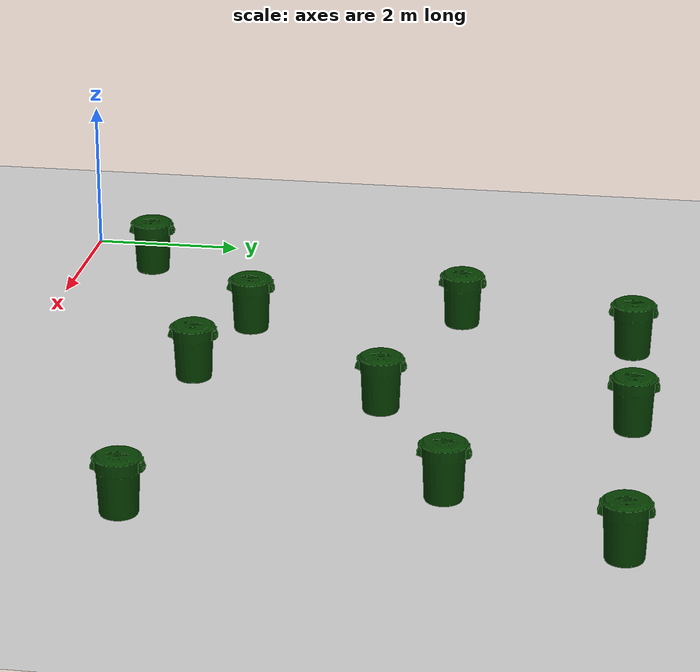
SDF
<sdf version="1.7">
 <world name="default">
  <light name="sun" type="directional">
   <pose>0 0 10 0 -0 0</pose>
   <diffuse>0.8 0.8 0.8 1</diffuse>
   <specular>0.2 0.2 0.2 1</specular>
   <attenuation>
    <range>1000</range>
    <constant>0.9</constant>
    <linear>0.01</linear>
    <quadratic>0.001</quadratic>
   </attenuation>
   <direction>-0.5 0.1 -0.9</direction>
   <spot><inner_angle>0</inner_angle><outer_angle>0</outer_angle><falloff>0</falloff></spot>
  </light>
  <model name="ground_plane">
   <static>1</static>
   <link name="link">
    <collision name="collision">
     <geometry><plane><normal>0 0 1</normal><size>100 100</size></plane></geometry>
     <surface><friction><ode><mu>100</mu><mu2>50</mu2></ode></friction></surface>
    </collision>
    <visual name="visual">
     <cast_shadows>0</cast_shadows>
     <geometry><plane><normal>0 0 1</normal><size>100 100</size></plane></geometry>
     <material>
      <script><uri>file://media/materials/scripts/gazebo.material</uri><name>Gazebo/Grey</name></script>
     </material>
    </visual>
   </link>
  </model>
  <gravity>0 0 -9.8</gravity>
  <magnetic_field>6e-06 2.3e-05 -4.2e-05</magnetic_field>
  <atmosphere type="adiabatic"/>
  <physics type="ode">
   <max_step_size>0.001</max_step_size>
   <real_time_factor>1</real_time_factor>
   <real_time_update_rate>1000</real_time_update_rate>
  </physics>
  <scene><ambient>0.4 0.4 0.4 1</ambient><background>0.7 0.7 0.7 1</background><shadows>1</shadows></scene>
  <audio><device>default</device></audio>
  <spherical_coordinates>
   <surface_model>EARTH_WGS84</surface_model>
   <latitude_deg>0</latitude_deg>
   <longitude_deg>0</longitude_deg>
   <elevation>0</elevation>
   <heading_deg>0</heading_deg>
  </spherical_coordinates>
  <model name="first_2015_trash_can">
   <link name="link">
    <inertial>
     <pose>0 0 0.3683 0 -0 0</pose>
     <mass>4.83076</mass>
     <inertia>
      <ixx>0.281534</ixx>
      <ixy>0</ixy>
      <ixz>0</ixz>
      <iyy>0.281534</iyy>
      <iyz>0</iyz>
      <izz>0.126223</izz>
     </inertia>
    </inertial>
    <visual name="visual">
     <geometry><mesh><uri>model://first_2015_trash_can/meshes/trash_can.dae</uri></mesh></geometry>
    </visual>
    <collision name="collision">
     <geometry><mesh><uri>model://first_2015_trash_can/meshes/trash_can.dae</uri></mesh></geometry>
    </collision>
   </link>
   <pose>1.00016 0.999981 -8e-06 -8e-06 1.4e-05 -0.000935</pose>
  </model>
  <model name="first_2015_trash_can_clone">
   <link name="link">
    <inertial>
     <pose>0 0 0.3683 0 -0 0</pose>
     <mass>4.83076</mass>
     <inertia>
      <ixx>0.281534</ixx>
      <ixy>0</ixy>
      <ixz>0</ixz>
      <iyy>0.281534</iyy>
      <iyz>0</iyz>
      <izz>0.126223</izz>
     </inertia>
    </inertial>
    <visual name="visual">
     <geometry><mesh><uri>model://first_2015_trash_can/meshes/trash_can.dae</uri></mesh></geometry>
    </visual>
    <collision name="collision">
     <geometry><mesh><uri>model://first_2015_trash_can/meshes/trash_can.dae</uri></mesh></geometry>
    </collision>
   </link>
   <pose>2.97578 2.78275 1e-06 -2.5e-05 1.4e-05 -0.00071</pose>
  </model>
  <model name="first_2015_trash_can_clone_0">
   <link name="link">
    <inertial>
     <pose>0 0 0.3683 0 -0 0</pose>
     <mass>4.83076</mass>
     <inertia>
      <ixx>0.281534</ixx>
      <ixy>0</ixy>
      <ixz>0</ixz>
      <iyy>0.281534</iyy>
      <iyz>0</iyz>
      <izz>0.126223</izz>
     </inertia>
    </inertial>
    <visual name="visual">
     <geometry><mesh><uri>model://first_2015_trash_can/meshes/trash_can.dae</uri></mesh></geometry>
    </visual>
    <collision name="collision">
     <geometry><mesh><uri>model://first_2015_trash_can/meshes/trash_can.dae</uri></mesh></geometry>
    </collision>
   </link>
   <pose>2.38483 5.53403 -4e-06 1.5e-05 1.8e-05 -0.000788</pose>
  </model>
  <model name="first_2015_trash_can_clone_1">
   <link name="link">
    <inertial>
     <pose>0 0 0.3683 0 -0 0</pose>
     <mass>4.83076</mass>
     <inertia>
      <ixx>0.281534</ixx>
      <ixy>0</ixy>
      <ixz>0</ixz>
      <iyy>0.281534</iyy>
      <iyz>0</iyz>
      <izz>0.126223</izz>
     </inertia>
    </inertial>
    <visual name="visual">
     <geometry><mesh><uri>model://first_2015_trash_can/meshes/trash_can.dae</uri></mesh></geometry>
    </visual>
    <collision name="collision">
     <geometry><mesh><uri>model://first_2015_trash_can/meshes/trash_can.dae</uri></mesh></geometry>
    </collision>
   </link>
   <pose>4.70859 2.37016 -1e-06 -1.7e-05 6e-06 -0.000856</pose>
  </model>
  <model name="first_2015_trash_can_clone_2">
   <link name="link">
    <inertial>
     <pose>0 0 0.3683 0 -0 0</pose>
     <mass>4.83076</mass>
     <inertia>
      <ixx>0.281534</ixx>
      <ixy>0</ixy>
      <ixz>0</ixz>
      <iyy>0.281534</iyy>
      <iyz>0</iyz>
      <izz>0.126223</izz>
     </inertia>
    </inertial>
    <visual name="visual">
     <geometry><mesh><uri>model://first_2015_trash_can/meshes/trash_can.dae</uri></mesh></geometry>
    </visual>
    <collision name="collision">
     <geometry><mesh><uri>model://first_2015_trash_can/meshes/trash_can.dae</uri></mesh></geometry>
    </collision>
   </link>
   <pose>5.36332 4.8686 -4e-06 -2e-06 3e-06 -0.000521</pose>
  </model>
  <model name="first_2015_trash_can_clone_3">
   <link name="link">
    <inertial>
     <pose>0 0 0.3683 0 -0 0</pose>
     <mass>4.83076</mass>
     <inertia>
      <ixx>0.281534</ixx>
      <ixy>0</ixy>
      <ixz>0</ixz>
      <iyy>0.281534</iyy>
      <iyz>0</iyz>
      <izz>0.126223</izz>
     </inertia>
    </inertial>
    <visual name="visual">
     <geometry><mesh><uri>model://first_2015_trash_can/meshes/trash_can.dae</uri></mesh></geometry>
    </visual>
    <collision name="collision">
     <geometry><mesh><uri>model://first_2015_trash_can/meshes/trash_can.dae</uri></mesh></geometry>
    </collision>
   </link>
   <pose>8.98492 8.09719 -1e-06 -2e-06 7e-06 -0.000698</pose>
  </model>
  <model name="first_2015_trash_can_clone_4">
   <link name="link">
    <inertial>
     <pose>0 0 0.3683 0 -0 0</pose>
     <mass>4.83076</mass>
     <inertia>
      <ixx>0.281534</ixx>
      <ixy>0</ixy>
      <ixz>0</ixz>
      <iyy>0.281534</iyy>
      <iyz>0</iyz>
      <izz>0.126223</izz>
     </inertia>
    </inertial>
    <visual name="visual">
     <geometry><mesh><uri>model://first_2015_trash_can/meshes/trash_can.dae</uri></mesh></geometry>
    </visual>
    <collision name="collision">
     <geometry><mesh><uri>model://first_2015_trash_can/meshes/trash_can.dae</uri></mesh></geometry>
    </collision>
   </link>
   <pose>7.77484 5.94812 3e-06 -2e-05 -1.2e-05 -0.000467</pose>
  </model>
  <model name="first_2015_trash_can_clone_5">
   <link name="link">
    <inertial>
     <pose>0 0 0.3683 0 -0 0</pose>
     <mass>4.83076</mass>
     <inertia>
      <ixx>0.281534</ixx>
      <ixy>0</ixy>
      <ixz>0</ixz>
      <iyy>0.281534</iyy>
      <iyz>0</iyz>
      <izz>0.126223</izz>
     </inertia>
    </inertial>
    <visual name="visual">
     <geometry><mesh><uri>model://first_2015_trash_can/meshes/trash_can.dae</uri></mesh></geometry>
    </visual>
    <collision name="collision">
     <geometry><mesh><uri>model://first_2015_trash_can/meshes/trash_can.dae</uri></mesh></geometry>
    </collision>
   </link>
   <pose>5.52241 7.98393 -4e-06 2e-06 3e-06 -0.000361</pose>
  </model>
  <model name="first_2015_trash_can_clone_6">
   <link name="link">
    <inertial>
     <pose>0 0 0.3683 0 -0 0</pose>
     <mass>4.83076</mass>
     <inertia>
      <ixx>0.281534</ixx>
      <ixy>0</ixy>
      <ixz>0</ixz>
      <iyy>0.281534</iyy>
      <iyz>0</iyz>
      <izz>0.126223</izz>
     </inertia>
    </inertial>
    <visual name="visual">
     <geometry><mesh><uri>model://first_2015_trash_can/meshes/trash_can.dae</uri></mesh></geometry>
    </visual>
    <collision name="collision">
     <geometry><mesh><uri>model://first_2015_trash_can/meshes/trash_can.dae</uri></mesh></geometry>
    </collision>
   </link>
   <pose>8.70389 2.34455 -0 -1.5e-05 1.6e-05 -0.000363</pose>
  </model>
  <model name="first_2015_trash_can_clone_7">
   <link name="link">
    <inertial>
     <pose>0 0 0.3683 0 -0 0</pose>
     <mass>4.83076</mass>
     <inertia>
      <ixx>0.281534</ixx>
      <ixy>0</ixy>
      <ixz>0</ixz>
      <iyy>0.281534</iyy>
      <iyz>0</iyz>
      <izz>0.126223</izz>
     </inertia>
    </inertial>
    <visual name="visual">
     <geometry><mesh><uri>model://first_2015_trash_can/meshes/trash_can.dae</uri></mesh></geometry>
    </visual>
    <collision name="collision">
     <geometry><mesh><uri>model://first_2015_trash_can/meshes/trash_can.dae</uri></mesh></geometry>
    </collision>
   </link>
   <pose>3.10555 7.84287 -2e-06 8e-06 8e-06 -0.000291</pose>
  </model>
 </world>
</sdf>
